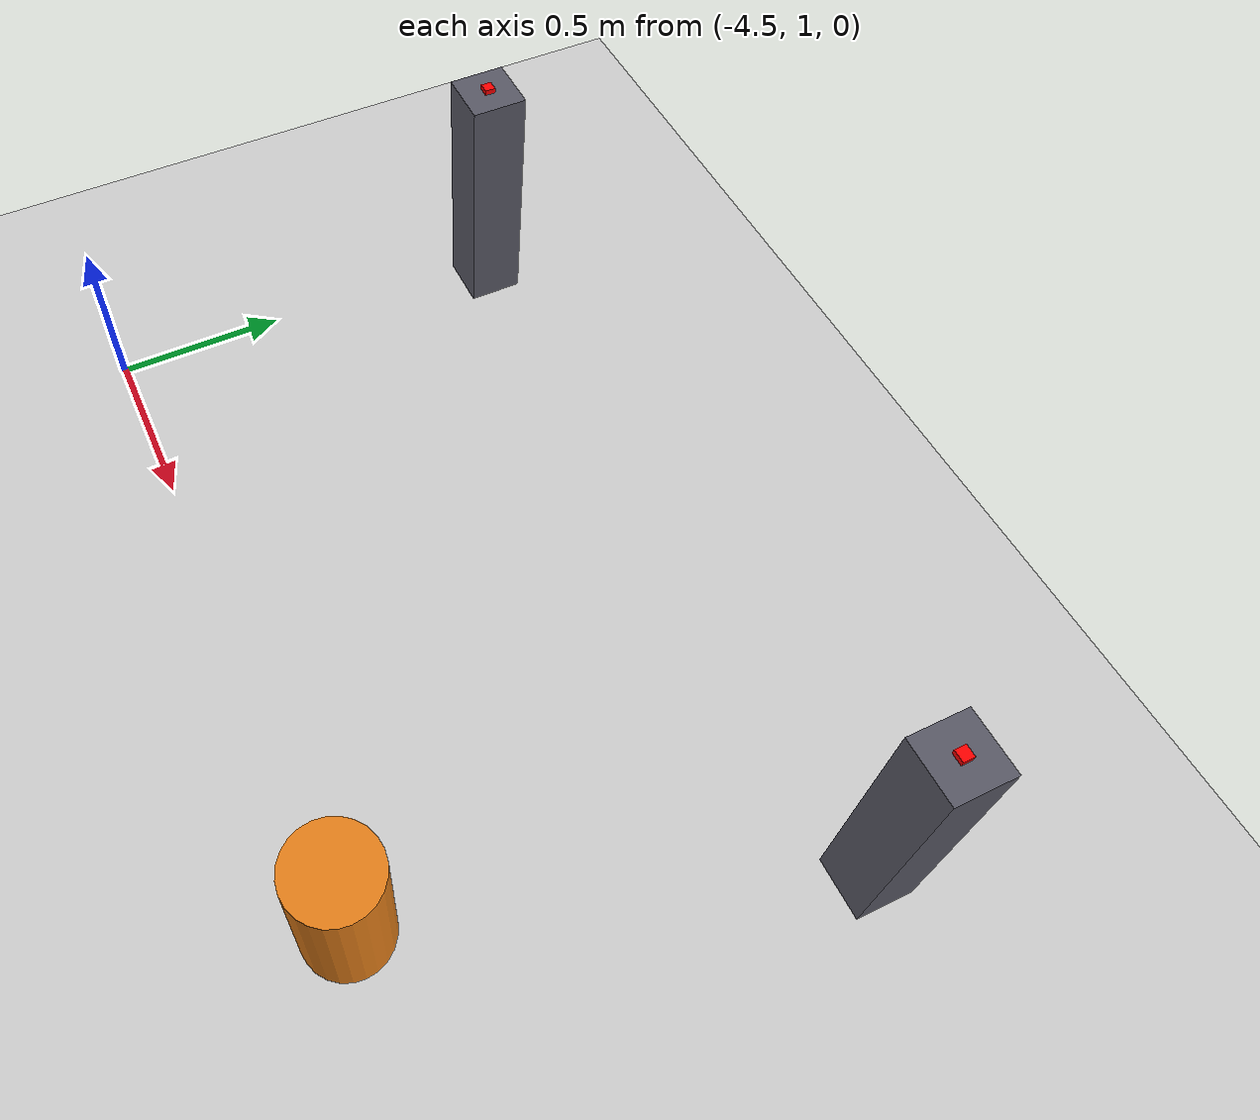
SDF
<sdf version="1.4">
 <world name="default">
  <model name="ground_plane">
   <static>1</static>
   <link name="link">
    <collision name="collision">
     <geometry><plane><normal>0 0 1</normal><size>100 100</size></plane></geometry>
     <surface><friction><ode><mu>100</mu><mu2>50</mu2></ode></friction></surface>
    </collision>
    <visual name="visual">
     <cast_shadows>0</cast_shadows>
     <geometry><plane><normal>0 0 1</normal><size>100 100</size></plane></geometry>
     <material>
      <script><uri>file://media/materials/scripts/gazebo.material</uri><name>Gazebo/Grey</name></script>
     </material>
    </visual>
    <velocity_decay><linear>0</linear><angular>0</angular></velocity_decay>
   </link>
  </model>
  <model name="red_cube_1">
   <pose>-4.4 2.2 0.75 0 0 0.0</pose>
   <link name="link">
    <inertial><mass>0.1</mass></inertial>
    <collision name="collision"><geometry><box><size>0.03 0.03 0.03</size></box></geometry></collision>
    <visual name="visual">
     <geometry><box><size>0.03 0.03 0.03</size></box></geometry>
     <material><ambient>1 0 0 1</ambient><diffuse>1 0 0 1</diffuse></material>
    </visual>
   </link>
  </model>
  <model name="red_cube_2">
   <pose>-2.2 2.2 0.75 0 0 0.0</pose>
   <link name="link">
    <inertial><mass>0.1</mass></inertial>
    <collision name="collision"><geometry><box><size>0.03 0.03 0.03</size></box></geometry></collision>
    <visual name="visual">
     <geometry><box><size>0.03 0.03 0.03</size></box></geometry>
     <material><ambient>1 0 0 1</ambient><diffuse>1 0 0 1</diffuse></material>
    </visual>
   </link>
  </model>
  <model name="support_red_cube_1">
   <static>true</static>
   <pose>-4.4 2.2 0.375 0 0 0</pose>
   <link name="link">
    <collision name="collision"><geometry><box><size>0.16 0.16 0.75</size></box></geometry></collision>
    <visual name="visual">
     <geometry><box><size>0.16 0.16 0.75</size></box></geometry>
     <material><ambient>0.35 0.35 0.4 1</ambient><diffuse>0.35 0.35 0.4 1</diffuse></material>
    </visual>
   </link>
  </model>
  <model name="support_red_cube_2">
   <static>true</static>
   <pose>-2.2 2.2 0.375 0 0 0</pose>
   <link name="link">
    <collision name="collision"><geometry><box><size>0.16 0.16 0.75</size></box></geometry></collision>
    <visual name="visual">
     <geometry><box><size>0.16 0.16 0.75</size></box></geometry>
     <material><ambient>0.35 0.35 0.4 1</ambient><diffuse>0.35 0.35 0.4 1</diffuse></material>
    </visual>
   </link>
  </model>
  <model name="obstacle_1">
   <pose>-2.6 1.0 0.23500000000000001 0 0 0</pose>
   <link name="link">
    <kinematic>true</kinematic>
    <inertial><mass>1.0</mass></inertial>
    <collision name="collision">
     <geometry><cylinder><radius>0.12</radius><length>0.45</length></cylinder></geometry>
    </collision>
    <visual name="visual">
     <geometry><cylinder><radius>0.12</radius><length>0.45</length></cylinder></geometry>
     <material><ambient>0.9 0.5 0.1 1.0</ambient><diffuse>0.9 0.5 0.1 1.0</diffuse></material>
    </visual>
   </link>
  </model>
 </world>
</sdf>
